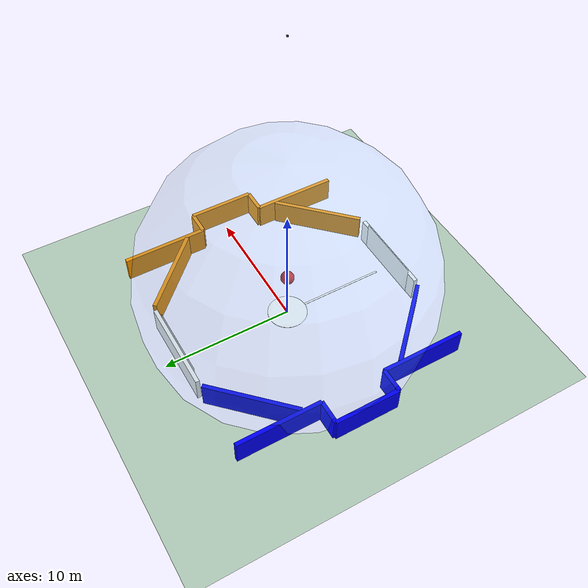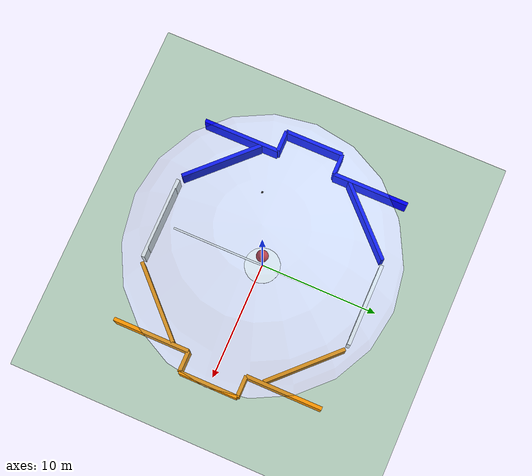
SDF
<?xml version="1.0"?>
<sdf version="1.6">
  <world name="bocbot_stadium">

    <physics type="ode">
      <max_step_size>0.01</max_step_size>
      <real_time_factor>1</real_time_factor>
      <real_time_update_rate>100</real_time_update_rate>
      <ode><solver><type>quick</type><iters>10</iters></solver></ode>
    </physics>

    <scene>
      <ambient>0.9 0.9 0.9 1</ambient>
      <background>0.5 0.7 1.0 1</background>
      <shadows>false</shadows>
      <grid>false</grid>
      <origin_visual>false</origin_visual>
    </scene>

    <light type="directional" name="sun">
      <cast_shadows>false</cast_shadows>
      <pose>0 0 15 0 0 0</pose>
      <diffuse>0.8 0.8 0.8 1</diffuse>
      <specular>0.2 0.2 0.2 1</specular>
      <attenuation>0.5</attenuation>
      <length>100</length>
    </light>

    <!-- SOL -->
    <model name="ground">
      <static>true</static>
      <link name="link">
        <collision name="c">
          <geometry><plane><normal>0 0 1</normal><size>25 25</size></plane></geometry>
        </collision>
        <visual name="v">
          <geometry><plane><normal>0 0 1</normal><size>25 25</size></plane></geometry>
          <material>
            <ambient>0.05 0.4 0.05 1</ambient>
            <diffuse>0.1 0.5 0.1 1</diffuse>
            <specular>0.01 0.05 0.01 1</specular>
          </material>
        </visual>
      </link>
    </model>

    <!-- OCTOGONE - MURS DU TERRAIN -->
    <!-- Mur Nord (neutre) -->
    <model name="wall_n">
      <static>true</static>
      <pose>0 9.0 1.0 0 0 0</pose>
      <link name="l">
        <collision name="c"><geometry><box><size>7.0 0.3 2.0</size></box></geometry></collision>
        <visual name="v"><geometry><box><size>7.0 0.3 2.0</size></box></geometry>
          <material><ambient>0.95 0.95 0.95 1</ambient><diffuse>1 1 1 1</diffuse><specular>0.3 0.3 0.3 1</specular></material>
        </visual>
      </link>
    </model>

    <!-- Mur Nord-Est (neutre) -->
    <model name="wall_ne">
      <static>true</static>
      <pose>6.4 6.4 1.0 0 0 -0.785398</pose>
      <link name="l">
        <collision name="c"><geometry><box><size>7.0 0.3 2.0</size></box></geometry></collision>
        <visual name="v"><geometry><box><size>7.0 0.3 2.0</size></box></geometry>
          <material><ambient>1.0 0.5 0.0 1</ambient><diffuse>1.0 0.6 0.0 1</diffuse><specular>0.5 0.3 0.0 1</specular></material>
        </visual>
      </link>
    </model>

    <!-- Camp orange: but en renfoncement -->
    <model name="wall_e_top">
      <static>true</static>
      <pose>9.0 5.75 1.0 0 0 1.570796</pose>
      <link name="l">
        <collision name="c"><geometry><box><size>6.5 0.3 2.0</size></box></geometry></collision>
        <visual name="v"><geometry><box><size>6.5 0.3 2.0</size></box></geometry>
          <material>
            <ambient>1.0 0.5 0.0 1</ambient>
            <diffuse>1.0 0.6 0.0 1</diffuse>
            <specular>0.5 0.3 0.0 1</specular>
            <emissive>0.5 0.2 0.0 1</emissive>
          </material>
        </visual>
      </link>
    </model>

    <model name="wall_e_bottom">
      <static>true</static>
      <pose>9.0 -5.75 1.0 0 0 1.570796</pose>
      <link name="l">
        <collision name="c"><geometry><box><size>6.5 0.3 2.0</size></box></geometry></collision>
        <visual name="v"><geometry><box><size>6.5 0.3 2.0</size></box></geometry>
          <material>
            <ambient>1.0 0.5 0.0 1</ambient>
            <diffuse>1.0 0.6 0.0 1</diffuse>
            <specular>0.5 0.3 0.0 1</specular>
            <emissive>0.5 0.2 0.0 1</emissive>
          </material>
        </visual>
      </link>
    </model>

    <model name="wall_se">
      <static>true</static>
      <pose>6.4 -6.4 1.0 0 0 0.785398</pose>
      <link name="l">
        <collision name="c"><geometry><box><size>7.0 0.3 2.0</size></box></geometry></collision>
        <visual name="v"><geometry><box><size>7.0 0.3 2.0</size></box></geometry>
          <material>
            <ambient>1.0 0.5 0.0 1</ambient>
            <diffuse>1.0 0.6 0.0 1</diffuse>
            <specular>0.5 0.3 0.0 1</specular>
            <emissive>0.5 0.2 0.0 1</emissive>
          </material>
        </visual>
      </link>
    </model>

    <model name="goal_orange_back">
      <static>true</static>
      <pose>10.8 0 1.0 0 0 1.570796</pose>
      <link name="l">
        <collision name="c"><geometry><box><size>5.0 0.3 2.0</size></box></geometry></collision>
        <visual name="v"><geometry><box><size>5.0 0.3 2.0</size></box></geometry>
          <material><ambient>1.0 0.5 0.0 1</ambient><diffuse>1.0 0.6 0.0 1</diffuse><specular>0.5 0.3 0.0 1</specular></material>
        </visual>
      </link>
    </model>

    <model name="goal_orange_top_side">
      <static>true</static>
      <pose>9.9 2.5 1.0 0 0 0</pose>
      <link name="l">
        <collision name="c"><geometry><box><size>1.8 0.3 2.0</size></box></geometry></collision>
        <visual name="v"><geometry><box><size>1.8 0.3 2.0</size></box></geometry>
          <material><ambient>1.0 0.5 0.0 1</ambient><diffuse>1.0 0.6 0.0 1</diffuse><specular>0.5 0.3 0.0 1</specular></material>
        </visual>
      </link>
    </model>

    <model name="goal_orange_bottom_side">
      <static>true</static>
      <pose>9.9 -2.5 1.0 0 0 0</pose>
      <link name="l">
        <collision name="c"><geometry><box><size>1.8 0.3 2.0</size></box></geometry></collision>
        <visual name="v"><geometry><box><size>1.8 0.3 2.0</size></box></geometry>
          <material><ambient>1.0 0.5 0.0 1</ambient><diffuse>1.0 0.6 0.0 1</diffuse><specular>0.5 0.3 0.0 1</specular></material>
        </visual>
      </link>
    </model>

    <!-- Film transparent a l'entree du but orange (visuel uniquement) -->
    <model name="goal_orange_film">
      <static>true</static>
      <pose>9.02 0 1.0 0 0 1.570796</pose>
      <link name="l">
        <visual name="v"><geometry><box><size>5.0 0.02 2.0</size></box></geometry>
          <material>
            <ambient>1.0 0.6 0.0 0.24</ambient>
            <diffuse>1.0 0.6 0.0 0.16</diffuse>
            <specular>0.9 0.7 0.3 0.24</specular>
          </material>
          <transparency>0.78</transparency>
        </visual>
      </link>
    </model>

    <!-- Mur Sud (neutre) -->
    <model name="wall_s">
      <static>true</static>
      <pose>0 -9.0 1.0 0 0 0</pose>
      <link name="l">
        <collision name="c"><geometry><box><size>7.0 0.3 2.0</size></box></geometry></collision>
        <visual name="v"><geometry><box><size>7.0 0.3 2.0</size></box></geometry>
          <material><ambient>0.95 0.95 0.95 1</ambient><diffuse>1 1 1 1</diffuse><specular>0.3 0.3 0.3 1</specular></material>
        </visual>
      </link>
    </model>

    <!-- Branding simple compatible Gazebo Classic -->
    <model name="brand_wall_n">
      <static>true</static>
      <pose>0 8.84 1.2 1.570796 0 0</pose>
      <link name="l">
        <visual name="v">
          <geometry>
            <plane>
              <normal>0 0 1</normal>
              <size>5.4 2.4</size>
            </plane>
          </geometry>
          <material>
            <script>
              <uri>file:///home/seatech/Bureau/ROS2_SEATECH/projet/bocbot_ws/install/bocbot_hunter/share/bocbot_hunter/media/materials/scripts</uri>
              <uri>file:///home/seatech/Bureau/ROS2_SEATECH/projet/bocbot_ws/install/bocbot_hunter/share/bocbot_hunter/media/materials/textures</uri>
              <name>ChickenDrive/LogoWall</name>
            </script>
            <ambient>1 1 1 1</ambient>
            <diffuse>1 1 1 1</diffuse>
          </material>
        </visual>
      </link>
    </model>

    <model name="brand_wall_s">
      <static>true</static>
      <pose>0 -8.84 1.2 -1.570796 0 0</pose>
      <link name="l">
        <visual name="v">
          <geometry>
            <plane>
              <normal>0 0 1</normal>
              <size>5.4 2.4</size>
            </plane>
          </geometry>
          <material>
            <script>
              <uri>file:///home/seatech/Bureau/ROS2_SEATECH/projet/bocbot_ws/install/bocbot_hunter/share/bocbot_hunter/media/materials/scripts</uri>
              <uri>file:///home/seatech/Bureau/ROS2_SEATECH/projet/bocbot_ws/install/bocbot_hunter/share/bocbot_hunter/media/materials/textures</uri>
              <name>ChickenDrive/LogoWall</name>
            </script>
            <ambient>1 1 1 1</ambient>
            <diffuse>1 1 1 1</diffuse>
          </material>
        </visual>
      </link>
    </model>

    <!-- Mur Sud-Ouest (camp bleu) -->
    <model name="wall_sw">
      <static>true</static>
      <pose>-6.4 -6.4 1.0 0 0 -0.785398</pose>
      <link name="l">
        <collision name="c"><geometry><box><size>7.0 0.3 2.0</size></box></geometry></collision>
        <visual name="v"><geometry><box><size>7.0 0.3 2.0</size></box></geometry>
          <material>
            <ambient>0.0 0.0 1.0 1</ambient>
            <diffuse>0.0 0.0 1.0 1</diffuse>
            <specular>0.3 0.3 0.8 1</specular>
            <emissive>0.0 0.0 0.5 1</emissive>
          </material>
        </visual>
      </link>
    </model>

    <!-- Camp bleu: but en renfoncement -->
    <model name="wall_w_top">
      <static>true</static>
      <pose>-9.0 5.75 1.0 0 0 1.570796</pose>
      <link name="l">
        <collision name="c"><geometry><box><size>6.5 0.3 2.0</size></box></geometry></collision>
        <visual name="v"><geometry><box><size>6.5 0.3 2.0</size></box></geometry>
          <material>
            <ambient>0.0 0.0 1.0 1</ambient>
            <diffuse>0.0 0.0 1.0 1</diffuse>
            <specular>0.3 0.3 0.8 1</specular>
            <emissive>0.0 0.0 0.5 1</emissive>
          </material>
        </visual>
      </link>
    </model>

    <model name="wall_w_bottom">
      <static>true</static>
      <pose>-9.0 -5.75 1.0 0 0 1.570796</pose>
      <link name="l">
        <collision name="c"><geometry><box><size>6.5 0.3 2.0</size></box></geometry></collision>
        <visual name="v"><geometry><box><size>6.5 0.3 2.0</size></box></geometry>
          <material>
            <ambient>0.0 0.0 1.0 1</ambient>
            <diffuse>0.0 0.0 1.0 1</diffuse>
            <specular>0.3 0.3 0.8 1</specular>
            <emissive>0.0 0.0 0.5 1</emissive>
          </material>
        </visual>
      </link>
    </model>

    <!-- Mur Nord-Ouest (camp bleu) -->
    <model name="wall_nw">
      <static>true</static>
      <pose>-6.4 6.4 1.0 0 0 0.785398</pose>
      <link name="l">
        <collision name="c"><geometry><box><size>7.0 0.3 2.0</size></box></geometry></collision>
        <visual name="v"><geometry><box><size>7.0 0.3 2.0</size></box></geometry>
          <material>
            <ambient>0.0 0.0 1.0 1</ambient>
            <diffuse>0.0 0.0 1.0 1</diffuse>
            <specular>0.3 0.3 0.8 1</specular>
            <emissive>0.0 0.0 0.5 1</emissive>
          </material>
        </visual>
      </link>
    </model>

    <model name="goal_blue_back">
      <static>true</static>
      <pose>-10.8 0 1.0 0 0 1.570796</pose>
      <link name="l">
        <collision name="c"><geometry><box><size>5.0 0.3 2.0</size></box></geometry></collision>
        <visual name="v"><geometry><box><size>5.0 0.3 2.0</size></box></geometry>
          <material><ambient>0.0 0.0 1.0 1</ambient><diffuse>0.0 0.0 1.0 1</diffuse><specular>0.3 0.3 0.8 1</specular></material>
        </visual>
      </link>
    </model>

    <model name="goal_blue_top_side">
      <static>true</static>
      <pose>-9.9 2.5 1.0 0 0 0</pose>
      <link name="l">
        <collision name="c"><geometry><box><size>1.8 0.3 2.0</size></box></geometry></collision>
        <visual name="v"><geometry><box><size>1.8 0.3 2.0</size></box></geometry>
          <material><ambient>0.0 0.0 1.0 1</ambient><diffuse>0.0 0.0 1.0 1</diffuse><specular>0.3 0.3 0.8 1</specular></material>
        </visual>
      </link>
    </model>

    <model name="goal_blue_bottom_side">
      <static>true</static>
      <pose>-9.9 -2.5 1.0 0 0 0</pose>
      <link name="l">
        <collision name="c"><geometry><box><size>1.8 0.3 2.0</size></box></geometry></collision>
        <visual name="v"><geometry><box><size>1.8 0.3 2.0</size></box></geometry>
          <material><ambient>0.0 0.0 1.0 1</ambient><diffuse>0.0 0.0 1.0 1</diffuse><specular>0.3 0.3 0.8 1</specular></material>
        </visual>
      </link>
    </model>

    <!-- Film transparent a l'entree du but bleu (visuel uniquement) -->
    <model name="goal_blue_film">
      <static>true</static>
      <pose>-9.02 0 1.0 0 0 1.570796</pose>
      <link name="l">
        <visual name="v"><geometry><box><size>5.0 0.02 2.0</size></box></geometry>
          <material>
            <ambient>0.2 0.5 1.0 0.24</ambient>
            <diffuse>0.2 0.5 1.0 0.16</diffuse>
            <specular>0.5 0.7 1.0 0.24</specular>
          </material>
          <transparency>0.78</transparency>
        </visual>
      </link>
    </model>

    <!-- LIGNES DU TERRAIN -->
    <model name="line_center">
      <static>true</static>
      <pose>0 0 0.02 0 0 0</pose>
      <link name="l">
        <visual name="v"><geometry><box><size>0.15 16 0.02</size></box></geometry>
          <material><ambient>1 1 1 1</ambient><diffuse>1 1 1 1</diffuse></material>
        </visual>
      </link>
    </model>

    <model name="center_circle">
      <static>true</static>
      <pose>0 0 0.02 0 0 0</pose>
      <link name="l">
        <visual name="v"><geometry><cylinder><radius>1.5</radius><length>0.02</length></cylinder></geometry>
          <material><ambient>1 1 1 0.8</ambient><diffuse>1 1 1 1</diffuse></material>
        </visual>
      </link>
    </model>

    <!-- BALLON -->
    <model name="ball">
      <pose>0 0 4.0 0 0 0</pose>
      <link name="link">
        <collision name="c">
          <geometry><sphere><radius>0.50</radius></sphere></geometry>
          <surface>
            <bounce>
              <restitution_coefficient>0.95</restitution_coefficient>
              <threshold>0.005</threshold>
            </bounce>
            <friction>
              <ode>
                <mu>0.3</mu>
                <mu2>0.3</mu2>
                <slip1>0.02</slip1>
                <slip2>0.02</slip2>
              </ode>
            </friction>
            <contact>
              <ode>
                <kp>800000.0</kp>
                <kd>30.0</kd>
                <max_vel>200.0</max_vel>
                <min_depth>0.001</min_depth>
              </ode>
            </contact>
          </surface>
        </collision>
        <visual name="v">
          <geometry><sphere><radius>0.50</radius></sphere></geometry>
          <material>
            <script><uri>file://media/materials/scripts/gazebo.material</uri><name>Gazebo/Red</name></script>
            <ambient>1 0 0 1</ambient>
            <diffuse>1 0 0 1</diffuse>
            <emissive>200 0 0 1</emissive>
            <specular>1 0 0 1</specular>
          </material>
        </visual>
        <inertial>
          <mass>2.5</mass>
          <inertia>
            <ixx>0.08</ixx>
            <iyy>0.08</iyy>
            <izz>0.08</izz>
          </inertia>
        </inertial>
        <gravity>true</gravity>
        <velocity_decay>
          <linear>0.001</linear>
          <angular>0.005</angular>
        </velocity_decay>
      </link>
    </model>

    <!-- CAMERA TOP-DOWN -->
    <model name="top_down_camera">
      <static>true</static>
      <pose>0 0 24 0 0 0</pose>
      <link name="link">
        <sensor name="camera" type="camera">
          <update_rate>55.0</update_rate>
          <pose>0 0 0 0 1.5708 0</pose>
          <camera name="cam">
            <horizontal_fov>0.95</horizontal_fov>
            <image>
              <width>512</width>
              <height>384</height>
            </image>
            <clip><near>0.5</near><far>200</far></clip>
          </camera>
          <plugin name="top_camera_controller" filename="libgazebo_ros_camera.so">
            <ros>
              <namespace>/game</namespace>
            </ros>
            <camera_name>top_down</camera_name>
            <frame_name>top_down_camera</frame_name>
          </plugin>
        </sensor>
        <visual name="cam_visual">
          <geometry><box><size>0.1 0.1 0.1</size></box></geometry>
          <material><ambient>0 0 0 1</ambient><diffuse>0 0 0 1</diffuse></material>
        </visual>
      </link>
    </model>

    <!-- Dome transparent bleu ciel au-dessus de l'arene (visuel uniquement) -->
    <model name="arena_sky_dome">
      <static>true</static>
      <pose>0 0 3.8 0 0 0</pose>
      <link name="l">
        <visual name="v">
          <geometry><sphere><radius>11.2</radius></sphere></geometry>
          <material>
            <ambient>0.45 0.75 1.0 0.24</ambient>
            <diffuse>0.45 0.75 1.0 0.18</diffuse>
            <specular>0.7 0.85 1.0 0.24</specular>
          </material>
          <transparency>0.76</transparency>
        </visual>
      </link>
    </model>

    <!-- PLUGINS GAZEBO -->
    <plugin name="gazebo_ros_state" filename="libgazebo_ros_state.so">
      <ros>
        <namespace>/gazebo</namespace>
      </ros>
    </plugin>

    <!-- GUI camera principale -->
    <gui><camera name="user_camera"><pose>0 -18 14 0 0.5 1.57</pose></camera></gui>

  </world>
</sdf>
